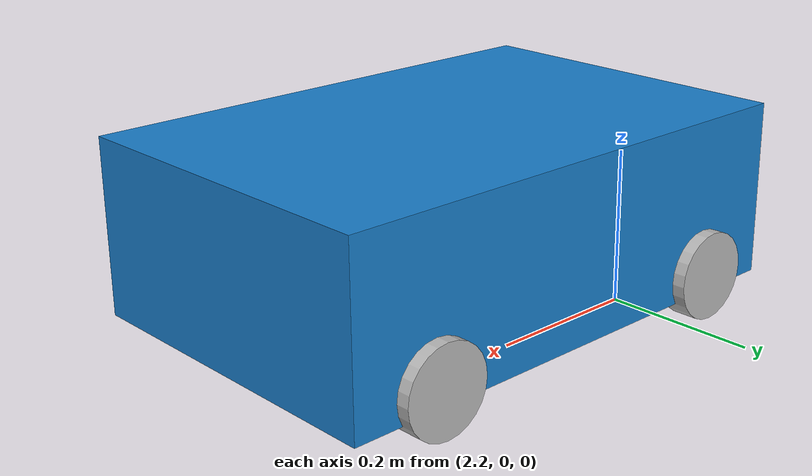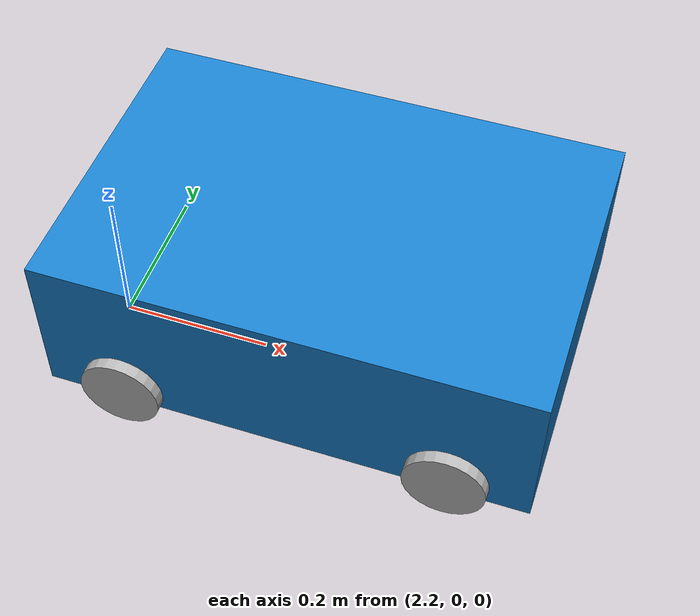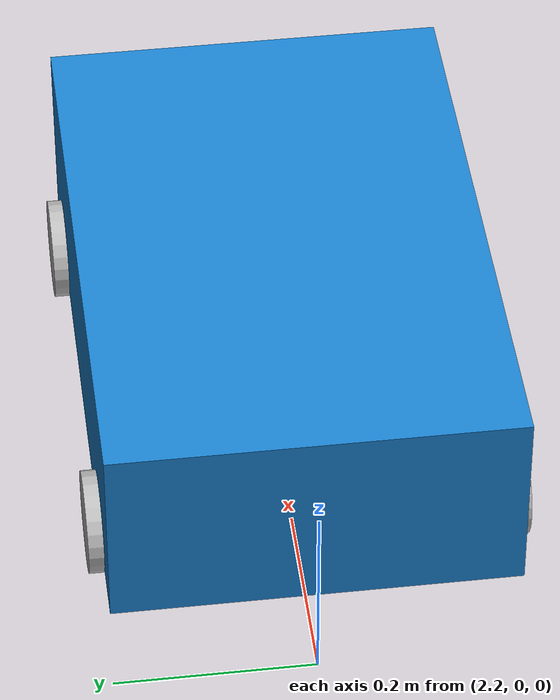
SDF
<?xml version="1.0" ?>
<sdf version="1.7">
  <model name="simple_agv">
    <pose>2.5 0 0.1 0 0 0</pose> <!-- Initial position on the ground -->

    <!-- Chassis -->
    <link name="chassis">
      <pose>0 0 0.1 0 0 0</pose>
      <inertial>
        <mass>10.0</mass>
        <inertia>
          <ixx>0.5</ixx>
          <iyy>0.5</iyy>
          <izz>0.5</izz>
        </inertia>
      </inertial>
      <collision name="collision">
        <geometry>
          <box>
            <size>0.6 0.4 0.2</size>
          </box>
        </geometry>
        <surface>
          <friction>
            <ode>
              <mu>1.5</mu>
              <mu2>1.5</mu2>
            </ode>
          </friction>
        </surface>
      </collision>
      <visual name="visual">
        <geometry>
          <box>
            <size>0.6 0.4 0.2</size>
          </box>
        </geometry>
        <material>
          <ambient>0.1 0.5 0.8 1</ambient>
        </material>
      </visual>
    </link>

    <!-- Wheels -->

    <!-- Front Left -->
    <link name="wheel_fl">
      <pose>0.2 0.2 0.025 0 0 0</pose>
      <collision name="collision">
        <geometry>
          <cylinder>
            <radius>0.05</radius>
            <length>0.03</length>
          </cylinder>
        </geometry>
        <pose>0 0 0 1.5708 0 0</pose> <!-- Rotate to spin around Y-axis -->
        <surface>
          <friction>
            <ode>
              <mu>2.0</mu>
              <mu2>2.0</mu2>
            </ode>
          </friction>
        </surface>
      </collision>
      <visual name="visual">
        <geometry>
          <cylinder>
            <radius>0.05</radius>
            <length>0.03</length>
          </cylinder>
        </geometry>
        <pose>0 0 0 1.5708 0 0</pose>
      </visual>
    </link>

    <!-- Front Right -->
    <link name="wheel_fr">
      <pose>0.2 -0.2 0.025 0 0 0</pose>
      <collision name="collision">
        <geometry>
          <cylinder>
            <radius>0.05</radius>
            <length>0.03</length>
          </cylinder>
        </geometry>
        <pose>0 0 0 1.5708 0 0</pose>
        <surface>
          <friction>
            <ode>
              <mu>2.0</mu>
              <mu2>2.0</mu2>
            </ode>
          </friction>
        </surface>
      </collision>
      <visual name="visual">
        <geometry>
          <cylinder>
            <radius>0.05</radius>
            <length>0.03</length>
          </cylinder>
        </geometry>
        <pose>0 0 0 1.5708 0 0</pose>
      </visual>
    </link>

    <!-- Rear Left -->
    <link name="wheel_rl">
      <pose>-0.2 0.2 0.025 0 0 0</pose>
      <collision name="collision">
        <geometry>
          <cylinder>
            <radius>0.05</radius>
            <length>0.03</length>
          </cylinder>
        </geometry>
        <pose>0 0 0 1.5708 0 0</pose>
      </collision>
      <visual name="visual">
        <geometry>
          <cylinder>
            <radius>0.05</radius>
            <length>0.03</length>
          </cylinder>
        </geometry>
        <pose>0 0 0 1.5708 0 0</pose>
      </visual>
    </link>

    <!-- Rear Right -->
    <link name="wheel_rr">
      <pose>-0.2 -0.2 0.025 0 0 0</pose>
      <collision name="collision">
        <geometry>
          <cylinder>
            <radius>0.05</radius>
            <length>0.03</length>
          </cylinder>
        </geometry>
        <pose>0 0 0 1.5708 0 0</pose>
      </collision>
      <visual name="visual">
        <geometry>
          <cylinder>
            <radius>0.05</radius>
            <length>0.03</length>
          </cylinder>
        </geometry>
        <pose>0 0 0 1.5708 0 0</pose>
      </visual>
    </link>

    <!-- Wheel Joints -->
    <joint name="wheel_fl_joint" type="revolute">
      <parent>chassis</parent>
      <child>wheel_fl</child>
      <axis>
        <xyz>0 1 0</xyz>
        <limit>
          <lower>-1000</lower>
          <upper>1000</upper>
          <effort>1e6</effort>
          <velocity>100</velocity>
        </limit>
      </axis>
    </joint>

    <joint name="wheel_fr_joint" type="revolute">
      <parent>chassis</parent>
      <child>wheel_fr</child>
      <axis>
        <xyz>0 1 0</xyz>
        <limit>
          <lower>-1000</lower>
          <upper>1000</upper>
          <effort>1e6</effort>
          <velocity>100</velocity>
        </limit>
      </axis>
    </joint>

    <joint name="wheel_rl_joint" type="revolute">
      <parent>chassis</parent>
      <child>wheel_rl</child>
      <axis>
        <xyz>0 1 0</xyz>
        <limit>
          <lower>-1000</lower>
          <upper>1000</upper>
        </limit>
      </axis>
    </joint>

    <joint name="wheel_rr_joint" type="revolute">
      <parent>chassis</parent>
      <child>wheel_rr</child>
      <axis>
        <xyz>0 1 0</xyz>
        <limit>
          <lower>-1000</lower>
          <upper>1000</upper>
        </limit>
      </axis>
    </joint>

    <!-- Diff Drive Plugin (2WD) -->
    <plugin
      name="ignition::gazebo::systems::DiffDrive"
      filename="libignition-gazebo-diff-drive-system.so">
      <left_joint>wheel_fl_joint</left_joint>
      <right_joint>wheel_fr_joint</right_joint>
      <wheel_separation>0.4</wheel_separation>
      <wheel_radius>0.05</wheel_radius>
      <odom_publish_tf>false</odom_publish_tf>
      <topic>/cmd_vel</topic>
      <odom_topic>/odom</odom_topic>
      <min_velocity>-1.0</min_velocity>
      <max_velocity>1.0</max_velocity>
      <min_acceleration>-1.0</min_acceleration>
      <max_acceleration>1.0</max_acceleration>
    </plugin>

  </model>
</sdf>
